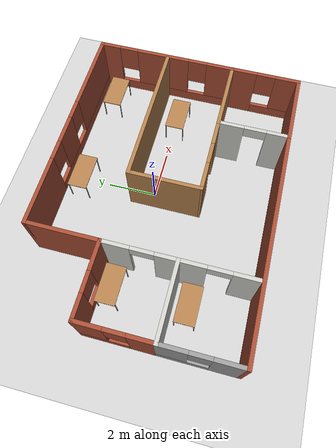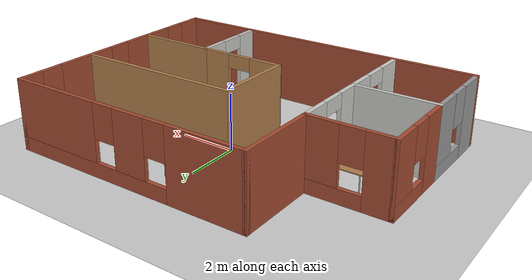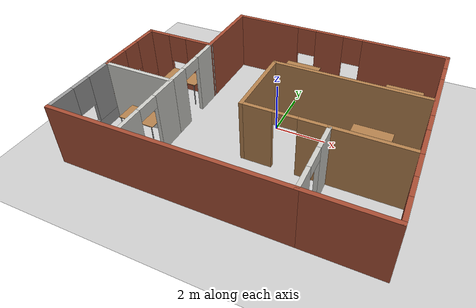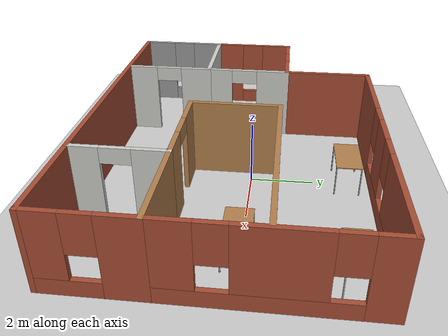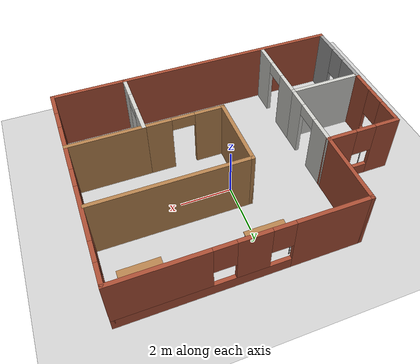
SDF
<sdf version="1.6">
 <world name="default">
  <light name="sun" type="directional">
   <pose>0 0 10 0 -0 0</pose>
   <diffuse>0.8 0.8 0.8 1</diffuse>
   <specular>0.2 0.2 0.2 1</specular>
   <attenuation>
    <range>1000</range>
    <constant>0.9</constant>
    <linear>0.01</linear>
    <quadratic>0.001</quadratic>
   </attenuation>
   <direction>-0.5 0.1 -0.9</direction>
  </light>
  <model name="ground_plane">
   <static>1</static>
   <link name="link">
    <collision name="collision">
     <geometry><plane><normal>0 0 1</normal><size>100 100</size></plane></geometry>
     <surface>
      <contact><collide_bitmask>65535</collide_bitmask></contact>
      <friction><ode><mu>100</mu><mu2>50</mu2></ode></friction>
     </surface>
    </collision>
    <visual name="visual">
     <cast_shadows>0</cast_shadows>
     <geometry><plane><normal>0 0 1</normal><size>100 100</size></plane></geometry>
     <material>
      <script><uri>file://media/materials/scripts/gazebo.material</uri><name>Gazebo/Grey</name></script>
     </material>
    </visual>
   </link>
  </model>
  <gravity>0 0 -9.8</gravity>
  <magnetic_field>6e-06 2.3e-05 -4.2e-05</magnetic_field>
  <atmosphere type="adiabatic"/>
  <physics name="default_physics" default="0" type="ode">
   <max_step_size>0.001</max_step_size>
   <real_time_factor>1</real_time_factor>
   <real_time_update_rate>1000</real_time_update_rate>
  </physics>
  <scene><ambient>0.4 0.4 0.4 1</ambient><background>0.7 0.7 0.7 1</background><shadows>1</shadows></scene>
  <spherical_coordinates>
   <surface_model>EARTH_WGS84</surface_model>
   <latitude_deg>0</latitude_deg>
   <longitude_deg>0</longitude_deg>
   <elevation>0</elevation>
   <heading_deg>0</heading_deg>
  </spherical_coordinates>
  <model name="building">
   <pose>-0.36815 -0.51695 0 0 -0 0</pose>
   <link name="Wall_10">
    <pose>-5.85 -2.775 0 0 -0 1.5708</pose>
    <visual name="Wall_10_Visual_0">
     <pose>-0.968582 0 1.25 0 -0 0</pose>
     <geometry><box><size>1.06284 0.15 2.5</size></box></geometry>
     <material>
      <script><uri>file://media/materials/scripts/gazebo.material</uri><name>Gazebo/Grey</name></script>
      <ambient>1 1 1 1</ambient>
     </material>
     <meta><layer>0</layer></meta>
    </visual>
    <collision name="Wall_10_Collision_0">
     <geometry><box><size>1.06284 0.15 2.5</size></box></geometry>
     <pose>-0.968582 0 1.25 0 -0 0</pose>
    </collision>
    <visual name="Wall_10_Visual_1">
     <pose>0.531418 0 0.25 0 -0 0</pose>
     <geometry><box><size>1.93716 0.15 0.5</size></box></geometry>
     <material>
      <script><uri>file://media/materials/scripts/gazebo.material</uri><name>Gazebo/Grey</name></script>
      <ambient>1 1 1 1</ambient>
     </material>
     <meta><layer>0</layer></meta>
    </visual>
    <collision name="Wall_10_Collision_1">
     <geometry><box><size>1.93716 0.15 0.5</size></box></geometry>
     <pose>0.531418 0 0.25 0 -0 0</pose>
    </collision>
    <visual name="Wall_10_Visual_2">
     <pose>0.931418 0 1.5 0 -0 0</pose>
     <geometry><box><size>1.13716 0.15 2</size></box></geometry>
     <material>
      <script><uri>file://media/materials/scripts/gazebo.material</uri><name>Gazebo/Grey</name></script>
      <ambient>1 1 1 1</ambient>
     </material>
     <meta><layer>0</layer></meta>
    </visual>
    <collision name="Wall_10_Collision_2">
     <geometry><box><size>1.13716 0.15 2</size></box></geometry>
     <pose>0.931418 0 1.5 0 -0 0</pose>
    </collision>
    <visual name="Wall_10_Visual_3">
     <pose>-0.037164 0 1.9 0 -0 0</pose>
     <geometry><box><size>0.8 0.15 1.2</size></box></geometry>
     <material>
      <script><uri>file://media/materials/scripts/gazebo.material</uri><name>Gazebo/Grey</name></script>
      <ambient>1 1 1 1</ambient>
     </material>
     <meta><layer>0</layer></meta>
    </visual>
    <collision name="Wall_10_Collision_3">
     <geometry><box><size>0.8 0.15 1.2</size></box></geometry>
     <pose>-0.037164 0 1.9 0 -0 0</pose>
    </collision>
   </link>
   <link name="Wall_11">
    <pose>-5.85 0.075 0 0 -0 1.5708</pose>
    <visual name="Wall_11_Visual_0">
     <pose>-0.955461 0 1.25 0 -0 0</pose>
     <geometry><box><size>1.08908 0.15 2.5</size></box></geometry>
     <material>
      <script><uri>file://media/materials/scripts/gazebo.material</uri><name>Gazebo/Bricks</name></script>
      <ambient>1 1 1 1</ambient>
     </material>
     <meta><layer>0</layer></meta>
    </visual>
    <collision name="Wall_11_Collision_0">
     <geometry><box><size>1.08908 0.15 2.5</size></box></geometry>
     <pose>-0.955461 0 1.25 0 -0 0</pose>
    </collision>
    <visual name="Wall_11_Visual_1">
     <pose>0.544539 0 0.25 0 -0 0</pose>
     <geometry><box><size>1.91092 0.15 0.5</size></box></geometry>
     <material>
      <script><uri>file://media/materials/scripts/gazebo.material</uri><name>Gazebo/Bricks</name></script>
      <ambient>1 1 1 1</ambient>
     </material>
     <meta><layer>0</layer></meta>
    </visual>
    <collision name="Wall_11_Collision_1">
     <geometry><box><size>1.91092 0.15 0.5</size></box></geometry>
     <pose>0.544539 0 0.25 0 -0 0</pose>
    </collision>
    <visual name="Wall_11_Visual_2">
     <pose>0.944539 0 1.5 0 -0 0</pose>
     <geometry><box><size>1.11092 0.15 2</size></box></geometry>
     <material>
      <script><uri>file://media/materials/scripts/gazebo.material</uri><name>Gazebo/Bricks</name></script>
      <ambient>1 1 1 1</ambient>
     </material>
     <meta><layer>0</layer></meta>
    </visual>
    <collision name="Wall_11_Collision_2">
     <geometry><box><size>1.11092 0.15 2</size></box></geometry>
     <pose>0.944539 0 1.5 0 -0 0</pose>
    </collision>
    <visual name="Wall_11_Visual_3">
     <pose>-0.010923 0 1.9 0 -0 0</pose>
     <geometry><box><size>0.8 0.15 1.2</size></box></geometry>
     <material>
      <script><uri>file://media/materials/scripts/gazebo.material</uri><name>Gazebo/Bricks</name></script>
      <ambient>1 1 1 1</ambient>
     </material>
     <meta><layer>0</layer></meta>
    </visual>
    <collision name="Wall_11_Collision_3">
     <geometry><box><size>0.8 0.15 1.2</size></box></geometry>
     <pose>-0.010923 0 1.9 0 -0 0</pose>
    </collision>
   </link>
   <link name="Wall_12">
    <pose>-4.425 1.5 0 0 -0 0</pose>
    <visual name="Wall_12_Visual_0">
     <pose>-0.998752 0 1.25 0 -0 0</pose>
     <geometry><box><size>1.0025 0.15 2.5</size></box></geometry>
     <material>
      <script><uri>file://media/materials/scripts/gazebo.material</uri><name>Gazebo/Bricks</name></script>
      <ambient>1 1 1 1</ambient>
     </material>
     <meta><layer>0</layer></meta>
    </visual>
    <collision name="Wall_12_Collision_0">
     <geometry><box><size>1.0025 0.15 2.5</size></box></geometry>
     <pose>-0.998752 0 1.25 0 -0 0</pose>
    </collision>
    <visual name="Wall_12_Visual_1">
     <pose>0.501248 0 0.25 0 -0 0</pose>
     <geometry><box><size>1.9975 0.15 0.5</size></box></geometry>
     <material>
      <script><uri>file://media/materials/scripts/gazebo.material</uri><name>Gazebo/Bricks</name></script>
      <ambient>1 1 1 1</ambient>
     </material>
     <meta><layer>0</layer></meta>
    </visual>
    <collision name="Wall_12_Collision_1">
     <geometry><box><size>1.9975 0.15 0.5</size></box></geometry>
     <pose>0.501248 0 0.25 0 -0 0</pose>
    </collision>
    <visual name="Wall_12_Visual_2">
     <pose>0.901248 0 1.5 0 -0 0</pose>
     <geometry><box><size>1.1975 0.15 2</size></box></geometry>
     <material>
      <script><uri>file://media/materials/scripts/gazebo.material</uri><name>Gazebo/Bricks</name></script>
      <ambient>1 1 1 1</ambient>
     </material>
     <meta><layer>0</layer></meta>
    </visual>
    <collision name="Wall_12_Collision_2">
     <geometry><box><size>1.1975 0.15 2</size></box></geometry>
     <pose>0.901248 0 1.5 0 -0 0</pose>
    </collision>
    <visual name="Wall_12_Visual_3">
     <pose>-0.097504 0 1.9 0 -0 0</pose>
     <geometry><box><size>0.8 0.15 1.2</size></box></geometry>
     <material>
      <script><uri>file://media/materials/scripts/gazebo.material</uri><name>Gazebo/Bricks</name></script>
      <ambient>1 1 1 1</ambient>
     </material>
     <meta><layer>0</layer></meta>
    </visual>
    <collision name="Wall_12_Collision_3">
     <geometry><box><size>0.8 0.15 1.2</size></box></geometry>
     <pose>-0.097504 0 1.9 0 -0 0</pose>
    </collision>
   </link>
   <link name="Wall_13">
    <collision name="Wall_13_Collision">
     <geometry><box><size>3 0.15 2.5</size></box></geometry>
     <pose>0 0 1.25 0 -0 0</pose>
    </collision>
    <visual name="Wall_13_Visual">
     <pose>0 0 1.25 0 -0 0</pose>
     <geometry><box><size>3 0.15 2.5</size></box></geometry>
     <material>
      <script><uri>file://media/materials/scripts/gazebo.material</uri><name>Gazebo/Bricks</name></script>
      <ambient>1 1 1 1</ambient>
     </material>
     <meta><layer>0</layer></meta>
    </visual>
    <pose>-3 2.925 0 0 -0 1.5708</pose>
   </link>
   <link name="Wall_14">
    <pose>1.425 4.35 0 0 -0 0</pose>
    <visual name="Wall_14_Visual_0">
     <pose>-3.10064 0 1.25 0 -0 0</pose>
     <geometry><box><size>2.79873 0.15 2.5</size></box></geometry>
     <material>
      <script><uri>file://media/materials/scripts/gazebo.material</uri><name>Gazebo/Bricks</name></script>
      <ambient>1 1 1 1</ambient>
     </material>
     <meta><layer>0</layer></meta>
    </visual>
    <collision name="Wall_14_Collision_0">
     <geometry><box><size>2.79873 0.15 2.5</size></box></geometry>
     <pose>-3.10064 0 1.25 0 -0 0</pose>
    </collision>
    <visual name="Wall_14_Visual_1">
     <pose>1.39936 0 0.25 0 -0 0</pose>
     <geometry><box><size>6.20127 0.15 0.5</size></box></geometry>
     <material>
      <script><uri>file://media/materials/scripts/gazebo.material</uri><name>Gazebo/Bricks</name></script>
      <ambient>1 1 1 1</ambient>
     </material>
     <meta><layer>0</layer></meta>
    </visual>
    <collision name="Wall_14_Collision_1">
     <geometry><box><size>6.20127 0.15 0.5</size></box></geometry>
     <pose>1.39936 0 0.25 0 -0 0</pose>
    </collision>
    <visual name="Wall_14_Visual_2">
     <pose>-0.305647 0 1.5 0 -0 0</pose>
     <geometry><box><size>1.19124 0.15 2</size></box></geometry>
     <material>
      <script><uri>file://media/materials/scripts/gazebo.material</uri><name>Gazebo/Bricks</name></script>
      <ambient>1 1 1 1</ambient>
     </material>
     <meta><layer>0</layer></meta>
    </visual>
    <collision name="Wall_14_Collision_2">
     <geometry><box><size>1.19124 0.15 2</size></box></geometry>
     <pose>-0.305647 0 1.5 0 -0 0</pose>
    </collision>
    <visual name="Wall_14_Visual_3">
     <pose>2.79499 0 1.5 0 -0 0</pose>
     <geometry><box><size>3.41003 0.15 2</size></box></geometry>
     <material>
      <script><uri>file://media/materials/scripts/gazebo.material</uri><name>Gazebo/Bricks</name></script>
      <ambient>1 1 1 1</ambient>
     </material>
     <meta><layer>0</layer></meta>
    </visual>
    <collision name="Wall_14_Collision_3">
     <geometry><box><size>3.41003 0.15 2</size></box></geometry>
     <pose>2.79499 0 1.5 0 -0 0</pose>
    </collision>
    <visual name="Wall_14_Visual_4">
     <pose>-1.30127 0 1.9 0 -0 0</pose>
     <geometry><box><size>0.8 0.15 1.2</size></box></geometry>
     <material>
      <script><uri>file://media/materials/scripts/gazebo.material</uri><name>Gazebo/Bricks</name></script>
      <ambient>1 1 1 1</ambient>
     </material>
     <meta><layer>0</layer></meta>
    </visual>
    <collision name="Wall_14_Collision_4">
     <geometry><box><size>0.8 0.15 1.2</size></box></geometry>
     <pose>-1.30127 0 1.9 0 -0 0</pose>
    </collision>
    <visual name="Wall_14_Visual_5">
     <pose>0.689974 0 1.9 0 -0 0</pose>
     <geometry><box><size>0.8 0.15 1.2</size></box></geometry>
     <material>
      <script><uri>file://media/materials/scripts/gazebo.material</uri><name>Gazebo/Bricks</name></script>
      <ambient>1 1 1 1</ambient>
     </material>
     <meta><layer>0</layer></meta>
    </visual>
    <collision name="Wall_14_Collision_5">
     <geometry><box><size>0.8 0.15 1.2</size></box></geometry>
     <pose>0.689974 0 1.9 0 -0 0</pose>
    </collision>
   </link>
   <link name="Wall_15">
    <pose>5.85 1.425 0 0 0 -1.5708</pose>
    <visual name="Wall_15_Visual_0">
     <pose>-2.54817 0 1.25 0 -0 0</pose>
     <geometry><box><size>0.90366 0.15 2.5</size></box></geometry>
     <material>
      <script><uri>file://media/materials/scripts/gazebo.material</uri><name>Gazebo/Bricks</name></script>
      <ambient>1 1 1 1</ambient>
     </material>
     <meta><layer>0</layer></meta>
    </visual>
    <collision name="Wall_15_Collision_0">
     <geometry><box><size>0.90366 0.15 2.5</size></box></geometry>
     <pose>-2.54817 0 1.25 0 -0 0</pose>
    </collision>
    <visual name="Wall_15_Visual_1">
     <pose>0.45183 0 0.25 0 -0 0</pose>
     <geometry><box><size>5.09634 0.15 0.5</size></box></geometry>
     <material>
      <script><uri>file://media/materials/scripts/gazebo.material</uri><name>Gazebo/Bricks</name></script>
      <ambient>1 1 1 1</ambient>
     </material>
     <meta><layer>0</layer></meta>
    </visual>
    <collision name="Wall_15_Collision_1">
     <geometry><box><size>5.09634 0.15 0.5</size></box></geometry>
     <pose>0.45183 0 0.25 0 -0 0</pose>
    </collision>
    <visual name="Wall_15_Visual_2">
     <pose>-0.147595 0 1.5 0 -0 0</pose>
     <geometry><box><size>2.29749 0.15 2</size></box></geometry>
     <material>
      <script><uri>file://media/materials/scripts/gazebo.material</uri><name>Gazebo/Bricks</name></script>
      <ambient>1 1 1 1</ambient>
     </material>
     <meta><layer>0</layer></meta>
    </visual>
    <collision name="Wall_15_Collision_2">
     <geometry><box><size>2.29749 0.15 2</size></box></geometry>
     <pose>-0.147595 0 1.5 0 -0 0</pose>
    </collision>
    <visual name="Wall_15_Visual_3">
     <pose>2.40057 0 1.5 0 -0 0</pose>
     <geometry><box><size>1.19885 0.15 2</size></box></geometry>
     <material>
      <script><uri>file://media/materials/scripts/gazebo.material</uri><name>Gazebo/Bricks</name></script>
      <ambient>1 1 1 1</ambient>
     </material>
     <meta><layer>0</layer></meta>
    </visual>
    <collision name="Wall_15_Collision_3">
     <geometry><box><size>1.19885 0.15 2</size></box></geometry>
     <pose>2.40057 0 1.5 0 -0 0</pose>
    </collision>
    <visual name="Wall_15_Visual_4">
     <pose>-1.69634 0 1.9 0 -0 0</pose>
     <geometry><box><size>0.8 0.15 1.2</size></box></geometry>
     <material>
      <script><uri>file://media/materials/scripts/gazebo.material</uri><name>Gazebo/Bricks</name></script>
      <ambient>1 1 1 1</ambient>
     </material>
     <meta><layer>0</layer></meta>
    </visual>
    <collision name="Wall_15_Collision_4">
     <geometry><box><size>0.8 0.15 1.2</size></box></geometry>
     <pose>-1.69634 0 1.9 0 -0 0</pose>
    </collision>
    <visual name="Wall_15_Visual_5">
     <pose>1.40115 0 1.9 0 -0 0</pose>
     <geometry><box><size>0.8 0.15 1.2</size></box></geometry>
     <material>
      <script><uri>file://media/materials/scripts/gazebo.material</uri><name>Gazebo/Bricks</name></script>
      <ambient>1 1 1 1</ambient>
     </material>
     <meta><layer>0</layer></meta>
    </visual>
    <collision name="Wall_15_Collision_5">
     <geometry><box><size>0.8 0.15 1.2</size></box></geometry>
     <pose>1.40115 0 1.9 0 -0 0</pose>
    </collision>
   </link>
   <link name="Wall_16">
    <collision name="Wall_16_Collision">
     <geometry><box><size>3 0.15 2.5</size></box></geometry>
     <pose>0 0 1.25 0 -0 0</pose>
    </collision>
    <visual name="Wall_16_Visual">
     <pose>0 0 1.25 0 -0 0</pose>
     <geometry><box><size>3 0.15 2.5</size></box></geometry>
     <material>
      <script><uri>file://media/materials/scripts/gazebo.material</uri><name>Gazebo/Wood</name></script>
      <ambient>1 1 1 1</ambient>
     </material>
     <meta><layer>0</layer></meta>
    </visual>
    <pose>4.425 -1.5 0 0 -0 3.14159</pose>
   </link>
   <link name="Wall_17">
    <pose>3 -2.925 0 0 0 -1.5708</pose>
    <visual name="Wall_17_Visual_0">
     <pose>-0.940908 0 1.25 0 -0 0</pose>
     <geometry><box><size>1.11818 0.15 2.5</size></box></geometry>
     <material>
      <script><uri>file://media/materials/scripts/gazebo.material</uri><name>Gazebo/CeilingTiled</name></script>
      <ambient>1 1 1 1</ambient>
     </material>
     <meta><layer>0</layer></meta>
    </visual>
    <collision name="Wall_17_Collision_0">
     <geometry><box><size>1.11818 0.15 2.5</size></box></geometry>
     <pose>-0.940908 0 1.25 0 -0 0</pose>
    </collision>
    <visual name="Wall_17_Visual_1">
     <pose>1.00909 0 1.25 0 -0 0</pose>
     <geometry><box><size>0.981815 0.15 2.5</size></box></geometry>
     <material>
      <script><uri>file://media/materials/scripts/gazebo.material</uri><name>Gazebo/CeilingTiled</name></script>
      <ambient>1 1 1 1</ambient>
     </material>
     <meta><layer>0</layer></meta>
    </visual>
    <collision name="Wall_17_Collision_1">
     <geometry><box><size>0.981815 0.15 2.5</size></box></geometry>
     <pose>1.00909 0 1.25 0 -0 0</pose>
    </collision>
    <visual name="Wall_17_Visual_2">
     <pose>0.068185 0 2.25 0 -0 0</pose>
     <geometry><box><size>0.9 0.15 0.5</size></box></geometry>
     <material>
      <script><uri>file://media/materials/scripts/gazebo.material</uri><name>Gazebo/CeilingTiled</name></script>
      <ambient>1 1 1 1</ambient>
     </material>
     <meta><layer>0</layer></meta>
    </visual>
    <collision name="Wall_17_Collision_2">
     <geometry><box><size>0.9 0.15 0.5</size></box></geometry>
     <pose>0.068185 0 2.25 0 -0 0</pose>
    </collision>
   </link>
   <link name="Wall_18">
    <collision name="Wall_18_Collision">
     <geometry><box><size>9 0.15 2.5</size></box></geometry>
     <pose>0 0 1.25 0 -0 0</pose>
    </collision>
    <visual name="Wall_18_Visual">
     <pose>0 0 1.25 0 -0 0</pose>
     <geometry><box><size>9 0.15 2.5</size></box></geometry>
     <material>
      <script><uri>file://media/materials/scripts/gazebo.material</uri><name>Gazebo/Bricks</name></script>
      <ambient>1 1 1 1</ambient>
     </material>
     <meta><layer>0</layer></meta>
    </visual>
    <pose>-1.425 -4.35 0 0 -0 3.14159</pose>
   </link>
   <link name="Wall_20">
    <pose>5.85 -2.925 0 0 0 -1.5708</pose>
    <visual name="Wall_20_Visual_0">
     <pose>-0.925964 0 1.25 0 -0 0</pose>
     <geometry><box><size>1.14807 0.15 2.5</size></box></geometry>
     <material>
      <script><uri>file://media/materials/scripts/gazebo.material</uri><name>Gazebo/Bricks</name></script>
      <ambient>1 1 1 1</ambient>
     </material>
     <meta><layer>0</layer></meta>
    </visual>
    <collision name="Wall_20_Collision_0">
     <geometry><box><size>1.14807 0.15 2.5</size></box></geometry>
     <pose>-0.925964 0 1.25 0 -0 0</pose>
    </collision>
    <visual name="Wall_20_Visual_1">
     <pose>0.574036 0 0.25 0 -0 0</pose>
     <geometry><box><size>1.85193 0.15 0.5</size></box></geometry>
     <material>
      <script><uri>file://media/materials/scripts/gazebo.material</uri><name>Gazebo/Bricks</name></script>
      <ambient>1 1 1 1</ambient>
     </material>
     <meta><layer>0</layer></meta>
    </visual>
    <collision name="Wall_20_Collision_1">
     <geometry><box><size>1.85193 0.15 0.5</size></box></geometry>
     <pose>0.574036 0 0.25 0 -0 0</pose>
    </collision>
    <visual name="Wall_20_Visual_2">
     <pose>0.974036 0 1.5 0 -0 0</pose>
     <geometry><box><size>1.05193 0.15 2</size></box></geometry>
     <material>
      <script><uri>file://media/materials/scripts/gazebo.material</uri><name>Gazebo/Bricks</name></script>
      <ambient>1 1 1 1</ambient>
     </material>
     <meta><layer>0</layer></meta>
    </visual>
    <collision name="Wall_20_Collision_2">
     <geometry><box><size>1.05193 0.15 2</size></box></geometry>
     <pose>0.974036 0 1.5 0 -0 0</pose>
    </collision>
    <visual name="Wall_20_Visual_3">
     <pose>0.048072 0 1.9 0 -0 0</pose>
     <geometry><box><size>0.8 0.15 1.2</size></box></geometry>
     <material>
      <script><uri>file://media/materials/scripts/gazebo.material</uri><name>Gazebo/Bricks</name></script>
      <ambient>1 1 1 1</ambient>
     </material>
     <meta><layer>0</layer></meta>
    </visual>
    <collision name="Wall_20_Collision_3">
     <geometry><box><size>0.8 0.15 1.2</size></box></geometry>
     <pose>0.048072 0 1.9 0 -0 0</pose>
    </collision>
   </link>
   <link name="Wall_21">
    <collision name="Wall_21_Collision">
     <geometry><box><size>3 0.15 2.5</size></box></geometry>
     <pose>0 0 1.25 0 -0 0</pose>
    </collision>
    <visual name="Wall_21_Visual">
     <pose>0 0 1.25 0 -0 0</pose>
     <geometry><box><size>3 0.15 2.5</size></box></geometry>
     <material>
      <script><uri>file://media/materials/scripts/gazebo.material</uri><name>Gazebo/Bricks</name></script>
      <ambient>1 1 1 1</ambient>
     </material>
     <meta><layer>0</layer></meta>
    </visual>
    <pose>4.425 -4.35 0 0 -0 3.14159</pose>
   </link>
   <link name="Wall_23">
    <pose>1.45 -1.5 0 0 -0 3.14159</pose>
    <visual name="Wall_23_Visual_0">
     <pose>-1.05823 0 1.25 0 -0 0</pose>
     <geometry><box><size>1.13355 0.15 2.5</size></box></geometry>
     <material>
      <script><uri>file://media/materials/scripts/gazebo.material</uri><name>Gazebo/Wood</name></script>
      <ambient>1 1 1 1</ambient>
     </material>
     <meta><layer>0</layer></meta>
    </visual>
    <collision name="Wall_23_Collision_0">
     <geometry><box><size>1.13355 0.15 2.5</size></box></geometry>
     <pose>-1.05823 0 1.25 0 -0 0</pose>
    </collision>
    <visual name="Wall_23_Visual_1">
     <pose>1.01677 0 1.25 0 -0 0</pose>
     <geometry><box><size>1.21645 0.15 2.5</size></box></geometry>
     <material>
      <script><uri>file://media/materials/scripts/gazebo.material</uri><name>Gazebo/Wood</name></script>
      <ambient>1 1 1 1</ambient>
     </material>
     <meta><layer>0</layer></meta>
    </visual>
    <collision name="Wall_23_Collision_1">
     <geometry><box><size>1.21645 0.15 2.5</size></box></geometry>
     <pose>1.01677 0 1.25 0 -0 0</pose>
    </collision>
    <visual name="Wall_23_Visual_2">
     <pose>-0.041453 0 2.25 0 -0 0</pose>
     <geometry><box><size>0.9 0.15 0.5</size></box></geometry>
     <material>
      <script><uri>file://media/materials/scripts/gazebo.material</uri><name>Gazebo/Wood</name></script>
      <ambient>1 1 1 1</ambient>
     </material>
     <meta><layer>0</layer></meta>
    </visual>
    <collision name="Wall_23_Collision_2">
     <geometry><box><size>0.9 0.15 0.5</size></box></geometry>
     <pose>-0.041453 0 2.25 0 -0 0</pose>
    </collision>
   </link>
   <link name="Wall_24">
    <collision name="Wall_24_Collision">
     <geometry><box><size>3 0.15 2.5</size></box></geometry>
     <pose>0 0 1.25 0 -0 0</pose>
    </collision>
    <visual name="Wall_24_Visual">
     <pose>0 0 1.25 0 -0 0</pose>
     <geometry><box><size>3 0.15 2.5</size></box></geometry>
     <material>
      <script><uri>file://media/materials/scripts/gazebo.material</uri><name>Gazebo/Wood</name></script>
      <ambient>1 1 1 1</ambient>
     </material>
     <meta><layer>0</layer></meta>
    </visual>
    <pose>-0.1 -0.075 0 0 -0 1.5708</pose>
   </link>
   <link name="Wall_25">
    <collision name="Wall_25_Collision">
     <geometry><box><size>6 0.15 2.5</size></box></geometry>
     <pose>0 0 1.25 0 -0 0</pose>
    </collision>
    <visual name="Wall_25_Visual">
     <pose>0 0 1.25 0 -0 0</pose>
     <geometry><box><size>6 0.15 2.5</size></box></geometry>
     <material>
      <script><uri>file://media/materials/scripts/gazebo.material</uri><name>Gazebo/Wood</name></script>
      <ambient>1 1 1 1</ambient>
     </material>
     <meta><layer>0</layer></meta>
    </visual>
    <pose>2.825 1.35 0 0 -0 0</pose>
   </link>
   <link name="Wall_27">
    <pose>-3 0.075 0 0 0 -1.5708</pose>
    <visual name="Wall_27_Visual_0">
     <pose>-0.919255 0 1.25 0 -0 0</pose>
     <geometry><box><size>1.16149 0.15 2.5</size></box></geometry>
     <material>
      <script><uri>file://media/materials/scripts/gazebo.material</uri><name>Gazebo/CeilingTiled</name></script>
      <ambient>1 1 1 1</ambient>
     </material>
     <meta><layer>0</layer></meta>
    </visual>
    <collision name="Wall_27_Collision_0">
     <geometry><box><size>1.16149 0.15 2.5</size></box></geometry>
     <pose>-0.919255 0 1.25 0 -0 0</pose>
    </collision>
    <visual name="Wall_27_Visual_1">
     <pose>1.03075 0 1.25 0 -0 0</pose>
     <geometry><box><size>0.938509 0.15 2.5</size></box></geometry>
     <material>
      <script><uri>file://media/materials/scripts/gazebo.material</uri><name>Gazebo/CeilingTiled</name></script>
      <ambient>1 1 1 1</ambient>
     </material>
     <meta><layer>0</layer></meta>
    </visual>
    <collision name="Wall_27_Collision_1">
     <geometry><box><size>0.938509 0.15 2.5</size></box></geometry>
     <pose>1.03075 0 1.25 0 -0 0</pose>
    </collision>
    <visual name="Wall_27_Visual_2">
     <pose>0.111491 0 2.25 0 -0 0</pose>
     <geometry><box><size>0.9 0.15 0.5</size></box></geometry>
     <material>
      <script><uri>file://media/materials/scripts/gazebo.material</uri><name>Gazebo/CeilingTiled</name></script>
      <ambient>1 1 1 1</ambient>
     </material>
     <meta><layer>0</layer></meta>
    </visual>
    <collision name="Wall_27_Collision_2">
     <geometry><box><size>0.9 0.15 0.5</size></box></geometry>
     <pose>0.111491 0 2.25 0 -0 0</pose>
    </collision>
   </link>
   <link name="Wall_28">
    <collision name="Wall_28_Collision">
     <geometry><box><size>3 0.15 2.5</size></box></geometry>
     <pose>0 0 1.25 0 -0 0</pose>
    </collision>
    <visual name="Wall_28_Visual">
     <pose>0 0 1.25 0 -0 0</pose>
     <geometry><box><size>3 0.15 2.5</size></box></geometry>
     <material>
      <script><uri>file://media/materials/scripts/gazebo.material</uri><name>Gazebo/CeilingTiled</name></script>
      <ambient>1 1 1 1</ambient>
     </material>
     <meta><layer>0</layer></meta>
    </visual>
    <pose>-4.425 -1.35 0 0 -0 3.14159</pose>
   </link>
   <link name="Wall_30">
    <pose>-3 -2.775 0 0 0 -1.5708</pose>
    <visual name="Wall_30_Visual_0">
     <pose>-0.946361 0 1.25 0 -0 0</pose>
     <geometry><box><size>1.10728 0.15 2.5</size></box></geometry>
     <material>
      <script><uri>file://media/materials/scripts/gazebo.material</uri><name>Gazebo/CeilingTiled</name></script>
      <ambient>1 1 1 1</ambient>
     </material>
     <meta><layer>0</layer></meta>
    </visual>
    <collision name="Wall_30_Collision_0">
     <geometry><box><size>1.10728 0.15 2.5</size></box></geometry>
     <pose>-0.946361 0 1.25 0 -0 0</pose>
    </collision>
    <visual name="Wall_30_Visual_1">
     <pose>1.00364 0 1.25 0 -0 0</pose>
     <geometry><box><size>0.992723 0.15 2.5</size></box></geometry>
     <material>
      <script><uri>file://media/materials/scripts/gazebo.material</uri><name>Gazebo/CeilingTiled</name></script>
      <ambient>1 1 1 1</ambient>
     </material>
     <meta><layer>0</layer></meta>
    </visual>
    <collision name="Wall_30_Collision_1">
     <geometry><box><size>0.992723 0.15 2.5</size></box></geometry>
     <pose>1.00364 0 1.25 0 -0 0</pose>
    </collision>
    <visual name="Wall_30_Visual_2">
     <pose>0.057277 0 2.25 0 -0 0</pose>
     <geometry><box><size>0.9 0.15 0.5</size></box></geometry>
     <material>
      <script><uri>file://media/materials/scripts/gazebo.material</uri><name>Gazebo/CeilingTiled</name></script>
      <ambient>1 1 1 1</ambient>
     </material>
     <meta><layer>0</layer></meta>
    </visual>
    <collision name="Wall_30_Collision_2">
     <geometry><box><size>0.9 0.15 0.5</size></box></geometry>
     <pose>0.057277 0 2.25 0 -0 0</pose>
    </collision>
   </link>
   <static>1</static>
  </model>
  <model name="table">
   <static>1</static>
   <link name="link">
    <collision name="surface">
     <pose>0 0 1 0 -0 0</pose>
     <geometry><box><size>1.5 0.8 0.03</size></box></geometry>
     <surface><friction><ode><mu>0.6</mu><mu2>0.6</mu2></ode></friction></surface>
    </collision>
    <visual name="visual1">
     <pose>0 0 1 0 -0 0</pose>
     <geometry><box><size>1.5 0.8 0.03</size></box></geometry>
     <material>
      <script><uri>file://media/materials/scripts/gazebo.material</uri><name>Gazebo/Wood</name></script>
     </material>
    </visual>
    <collision name="front_left_leg">
     <pose>0.68 0.38 0.5 0 -0 0</pose>
     <geometry><cylinder><radius>0.02</radius><length>1</length></cylinder></geometry>
    </collision>
    <visual name="front_left_leg">
     <pose>0.68 0.38 0.5 0 -0 0</pose>
     <geometry><cylinder><radius>0.02</radius><length>1</length></cylinder></geometry>
     <material>
      <script><uri>file://media/materials/scripts/gazebo.material</uri><name>Gazebo/Grey</name></script>
     </material>
    </visual>
    <collision name="front_right_leg">
     <pose>0.68 -0.38 0.5 0 -0 0</pose>
     <geometry><cylinder><radius>0.02</radius><length>1</length></cylinder></geometry>
    </collision>
    <visual name="front_right_leg">
     <pose>0.68 -0.38 0.5 0 -0 0</pose>
     <geometry><cylinder><radius>0.02</radius><length>1</length></cylinder></geometry>
     <material>
      <script><uri>file://media/materials/scripts/gazebo.material</uri><name>Gazebo/Grey</name></script>
     </material>
    </visual>
    <collision name="back_right_leg">
     <pose>-0.68 -0.38 0.5 0 -0 0</pose>
     <geometry><cylinder><radius>0.02</radius><length>1</length></cylinder></geometry>
    </collision>
    <visual name="back_right_leg">
     <pose>-0.68 -0.38 0.5 0 -0 0</pose>
     <geometry><cylinder><radius>0.02</radius><length>1</length></cylinder></geometry>
     <material>
      <script><uri>file://media/materials/scripts/gazebo.material</uri><name>Gazebo/Grey</name></script>
     </material>
    </visual>
    <collision name="back_left_leg">
     <pose>-0.68 0.38 0.5 0 -0 0</pose>
     <geometry><cylinder><radius>0.02</radius><length>1</length></cylinder></geometry>
    </collision>
    <visual name="back_left_leg">
     <pose>-0.68 0.38 0.5 0 -0 0</pose>
     <geometry><cylinder><radius>0.02</radius><length>1</length></cylinder></geometry>
     <material>
      <script><uri>file://media/materials/scripts/gazebo.material</uri><name>Gazebo/Grey</name></script>
     </material>
    </visual>
   </link>
   <pose>4.23176 2.95689 0 0 -0 0</pose>
  </model>
  <model name="table_clone">
   <static>1</static>
   <link name="link">
    <collision name="surface">
     <pose>0 0 1 0 -0 0</pose>
     <geometry><box><size>1.5 0.8 0.03</size></box></geometry>
     <surface><friction><ode><mu>0.6</mu><mu2>0.6</mu2></ode></friction></surface>
    </collision>
    <visual name="visual1">
     <pose>0 0 1 0 -0 0</pose>
     <geometry><box><size>1.5 0.8 0.03</size></box></geometry>
     <material>
      <script><uri>file://media/materials/scripts/gazebo.material</uri><name>Gazebo/Wood</name></script>
     </material>
    </visual>
    <collision name="front_left_leg">
     <pose>0.68 0.38 0.5 0 -0 0</pose>
     <geometry><cylinder><radius>0.02</radius><length>1</length></cylinder></geometry>
    </collision>
    <visual name="front_left_leg">
     <pose>0.68 0.38 0.5 0 -0 0</pose>
     <geometry><cylinder><radius>0.02</radius><length>1</length></cylinder></geometry>
     <material>
      <script><uri>file://media/materials/scripts/gazebo.material</uri><name>Gazebo/Grey</name></script>
     </material>
    </visual>
    <collision name="front_right_leg">
     <pose>0.68 -0.38 0.5 0 -0 0</pose>
     <geometry><cylinder><radius>0.02</radius><length>1</length></cylinder></geometry>
    </collision>
    <visual name="front_right_leg">
     <pose>0.68 -0.38 0.5 0 -0 0</pose>
     <geometry><cylinder><radius>0.02</radius><length>1</length></cylinder></geometry>
     <material>
      <script><uri>file://media/materials/scripts/gazebo.material</uri><name>Gazebo/Grey</name></script>
     </material>
    </visual>
    <collision name="back_right_leg">
     <pose>-0.68 -0.38 0.5 0 -0 0</pose>
     <geometry><cylinder><radius>0.02</radius><length>1</length></cylinder></geometry>
    </collision>
    <visual name="back_right_leg">
     <pose>-0.68 -0.38 0.5 0 -0 0</pose>
     <geometry><cylinder><radius>0.02</radius><length>1</length></cylinder></geometry>
     <material>
      <script><uri>file://media/materials/scripts/gazebo.material</uri><name>Gazebo/Grey</name></script>
     </material>
    </visual>
    <collision name="back_left_leg">
     <pose>-0.68 0.38 0.5 0 -0 0</pose>
     <geometry><cylinder><radius>0.02</radius><length>1</length></cylinder></geometry>
    </collision>
    <visual name="back_left_leg">
     <pose>-0.68 0.38 0.5 0 -0 0</pose>
     <geometry><cylinder><radius>0.02</radius><length>1</length></cylinder></geometry>
     <material>
      <script><uri>file://media/materials/scripts/gazebo.material</uri><name>Gazebo/Grey</name></script>
     </material>
    </visual>
   </link>
   <pose>-0.14783 3.03349 0 0 -0 0</pose>
  </model>
  <model name="table_clone_0">
   <static>1</static>
   <link name="link">
    <collision name="surface">
     <pose>0 0 1 0 -0 0</pose>
     <geometry><box><size>1.5 0.8 0.03</size></box></geometry>
     <surface><friction><ode><mu>0.6</mu><mu2>0.6</mu2></ode></friction></surface>
    </collision>
    <visual name="visual1">
     <pose>0 0 1 0 -0 0</pose>
     <geometry><box><size>1.5 0.8 0.03</size></box></geometry>
     <material>
      <script><uri>file://media/materials/scripts/gazebo.material</uri><name>Gazebo/Wood</name></script>
     </material>
    </visual>
    <collision name="front_left_leg">
     <pose>0.68 0.38 0.5 0 -0 0</pose>
     <geometry><cylinder><radius>0.02</radius><length>1</length></cylinder></geometry>
    </collision>
    <visual name="front_left_leg">
     <pose>0.68 0.38 0.5 0 -0 0</pose>
     <geometry><cylinder><radius>0.02</radius><length>1</length></cylinder></geometry>
     <material>
      <script><uri>file://media/materials/scripts/gazebo.material</uri><name>Gazebo/Grey</name></script>
     </material>
    </visual>
    <collision name="front_right_leg">
     <pose>0.68 -0.38 0.5 0 -0 0</pose>
     <geometry><cylinder><radius>0.02</radius><length>1</length></cylinder></geometry>
    </collision>
    <visual name="front_right_leg">
     <pose>0.68 -0.38 0.5 0 -0 0</pose>
     <geometry><cylinder><radius>0.02</radius><length>1</length></cylinder></geometry>
     <material>
      <script><uri>file://media/materials/scripts/gazebo.material</uri><name>Gazebo/Grey</name></script>
     </material>
    </visual>
    <collision name="back_right_leg">
     <pose>-0.68 -0.38 0.5 0 -0 0</pose>
     <geometry><cylinder><radius>0.02</radius><length>1</length></cylinder></geometry>
    </collision>
    <visual name="back_right_leg">
     <pose>-0.68 -0.38 0.5 0 -0 0</pose>
     <geometry><cylinder><radius>0.02</radius><length>1</length></cylinder></geometry>
     <material>
      <script><uri>file://media/materials/scripts/gazebo.material</uri><name>Gazebo/Grey</name></script>
     </material>
    </visual>
    <collision name="back_left_leg">
     <pose>-0.68 0.38 0.5 0 -0 0</pose>
     <geometry><cylinder><radius>0.02</radius><length>1</length></cylinder></geometry>
    </collision>
    <visual name="back_left_leg">
     <pose>-0.68 0.38 0.5 0 -0 0</pose>
     <geometry><cylinder><radius>0.02</radius><length>1</length></cylinder></geometry>
     <material>
      <script><uri>file://media/materials/scripts/gazebo.material</uri><name>Gazebo/Grey</name></script>
     </material>
    </visual>
   </link>
   <pose>3.6809 -0.091851 0 0 -0 0</pose>
  </model>
  <model name="table_clone_1">
   <static>1</static>
   <link name="link">
    <collision name="surface">
     <pose>0 0 1 0 -0 0</pose>
     <geometry><box><size>1.5 0.8 0.03</size></box></geometry>
     <surface><friction><ode><mu>0.6</mu><mu2>0.6</mu2></ode></friction></surface>
    </collision>
    <visual name="visual1">
     <pose>0 0 1 0 -0 0</pose>
     <geometry><box><size>1.5 0.8 0.03</size></box></geometry>
     <material>
      <script><uri>file://media/materials/scripts/gazebo.material</uri><name>Gazebo/Wood</name></script>
     </material>
    </visual>
    <collision name="front_left_leg">
     <pose>0.68 0.38 0.5 0 -0 0</pose>
     <geometry><cylinder><radius>0.02</radius><length>1</length></cylinder></geometry>
    </collision>
    <visual name="front_left_leg">
     <pose>0.68 0.38 0.5 0 -0 0</pose>
     <geometry><cylinder><radius>0.02</radius><length>1</length></cylinder></geometry>
     <material>
      <script><uri>file://media/materials/scripts/gazebo.material</uri><name>Gazebo/Grey</name></script>
     </material>
    </visual>
    <collision name="front_right_leg">
     <pose>0.68 -0.38 0.5 0 -0 0</pose>
     <geometry><cylinder><radius>0.02</radius><length>1</length></cylinder></geometry>
    </collision>
    <visual name="front_right_leg">
     <pose>0.68 -0.38 0.5 0 -0 0</pose>
     <geometry><cylinder><radius>0.02</radius><length>1</length></cylinder></geometry>
     <material>
      <script><uri>file://media/materials/scripts/gazebo.material</uri><name>Gazebo/Grey</name></script>
     </material>
    </visual>
    <collision name="back_right_leg">
     <pose>-0.68 -0.38 0.5 0 -0 0</pose>
     <geometry><cylinder><radius>0.02</radius><length>1</length></cylinder></geometry>
    </collision>
    <visual name="back_right_leg">
     <pose>-0.68 -0.38 0.5 0 -0 0</pose>
     <geometry><cylinder><radius>0.02</radius><length>1</length></cylinder></geometry>
     <material>
      <script><uri>file://media/materials/scripts/gazebo.material</uri><name>Gazebo/Grey</name></script>
     </material>
    </visual>
    <collision name="back_left_leg">
     <pose>-0.68 0.38 0.5 0 -0 0</pose>
     <geometry><cylinder><radius>0.02</radius><length>1</length></cylinder></geometry>
    </collision>
    <visual name="back_left_leg">
     <pose>-0.68 0.38 0.5 0 -0 0</pose>
     <geometry><cylinder><radius>0.02</radius><length>1</length></cylinder></geometry>
     <material>
      <script><uri>file://media/materials/scripts/gazebo.material</uri><name>Gazebo/Grey</name></script>
     </material>
    </visual>
   </link>
   <pose>-4.41001 0.426513 0 0 -0 0</pose>
  </model>
  <model name="table_clone_2">
   <static>1</static>
   <link name="link">
    <collision name="surface">
     <pose>0 0 1 0 -0 0</pose>
     <geometry><box><size>1.5 0.8 0.03</size></box></geometry>
     <surface><friction><ode><mu>0.6</mu><mu2>0.6</mu2></ode></friction></surface>
    </collision>
    <visual name="visual1">
     <pose>0 0 1 0 -0 0</pose>
     <geometry><box><size>1.5 0.8 0.03</size></box></geometry>
     <material>
      <script><uri>file://media/materials/scripts/gazebo.material</uri><name>Gazebo/Wood</name></script>
     </material>
    </visual>
    <collision name="front_left_leg">
     <pose>0.68 0.38 0.5 0 -0 0</pose>
     <geometry><cylinder><radius>0.02</radius><length>1</length></cylinder></geometry>
    </collision>
    <visual name="front_left_leg">
     <pose>0.68 0.38 0.5 0 -0 0</pose>
     <geometry><cylinder><radius>0.02</radius><length>1</length></cylinder></geometry>
     <material>
      <script><uri>file://media/materials/scripts/gazebo.material</uri><name>Gazebo/Grey</name></script>
     </material>
    </visual>
    <collision name="front_right_leg">
     <pose>0.68 -0.38 0.5 0 -0 0</pose>
     <geometry><cylinder><radius>0.02</radius><length>1</length></cylinder></geometry>
    </collision>
    <visual name="front_right_leg">
     <pose>0.68 -0.38 0.5 0 -0 0</pose>
     <geometry><cylinder><radius>0.02</radius><length>1</length></cylinder></geometry>
     <material>
      <script><uri>file://media/materials/scripts/gazebo.material</uri><name>Gazebo/Grey</name></script>
     </material>
    </visual>
    <collision name="back_right_leg">
     <pose>-0.68 -0.38 0.5 0 -0 0</pose>
     <geometry><cylinder><radius>0.02</radius><length>1</length></cylinder></geometry>
    </collision>
    <visual name="back_right_leg">
     <pose>-0.68 -0.38 0.5 0 -0 0</pose>
     <geometry><cylinder><radius>0.02</radius><length>1</length></cylinder></geometry>
     <material>
      <script><uri>file://media/materials/scripts/gazebo.material</uri><name>Gazebo/Grey</name></script>
     </material>
    </visual>
    <collision name="back_left_leg">
     <pose>-0.68 0.38 0.5 0 -0 0</pose>
     <geometry><cylinder><radius>0.02</radius><length>1</length></cylinder></geometry>
    </collision>
    <visual name="back_left_leg">
     <pose>-0.68 0.38 0.5 0 -0 0</pose>
     <geometry><cylinder><radius>0.02</radius><length>1</length></cylinder></geometry>
     <material>
      <script><uri>file://media/materials/scripts/gazebo.material</uri><name>Gazebo/Grey</name></script>
     </material>
    </visual>
   </link>
   <pose>-4.40569 -2.53654 0 0 -0 0</pose>
  </model>
 </world>
</sdf>
